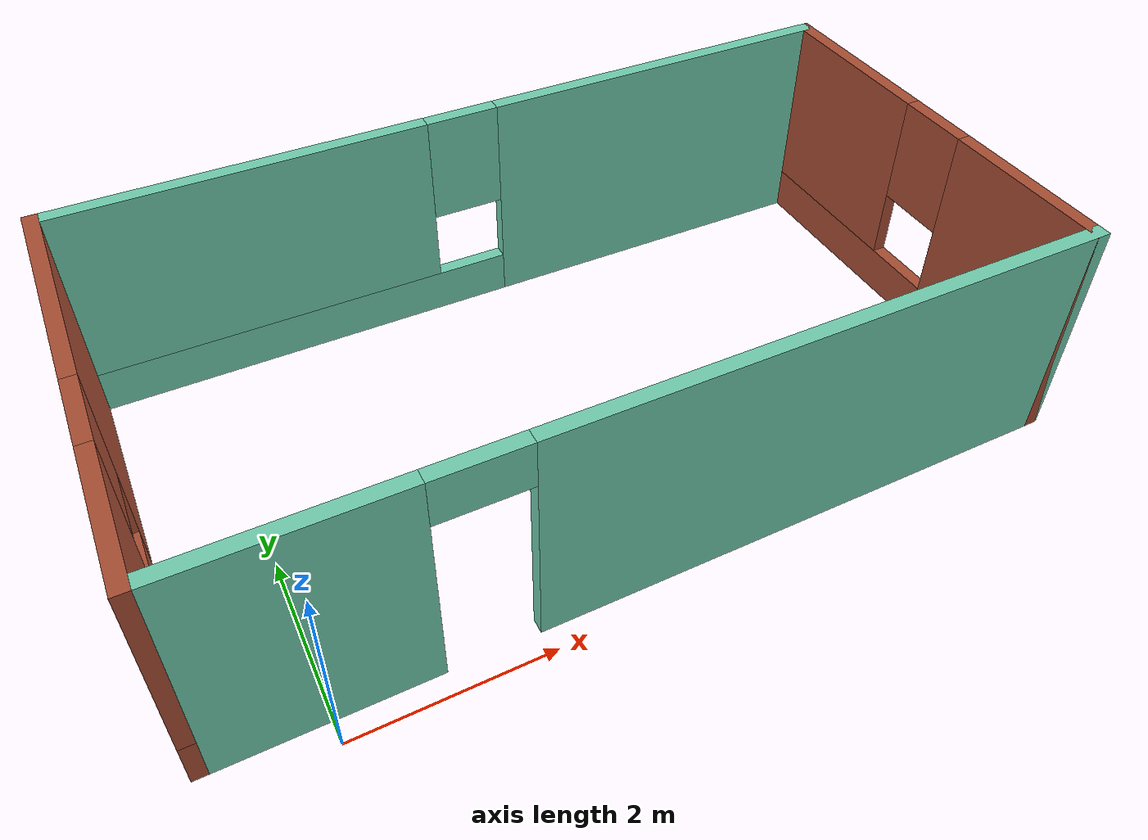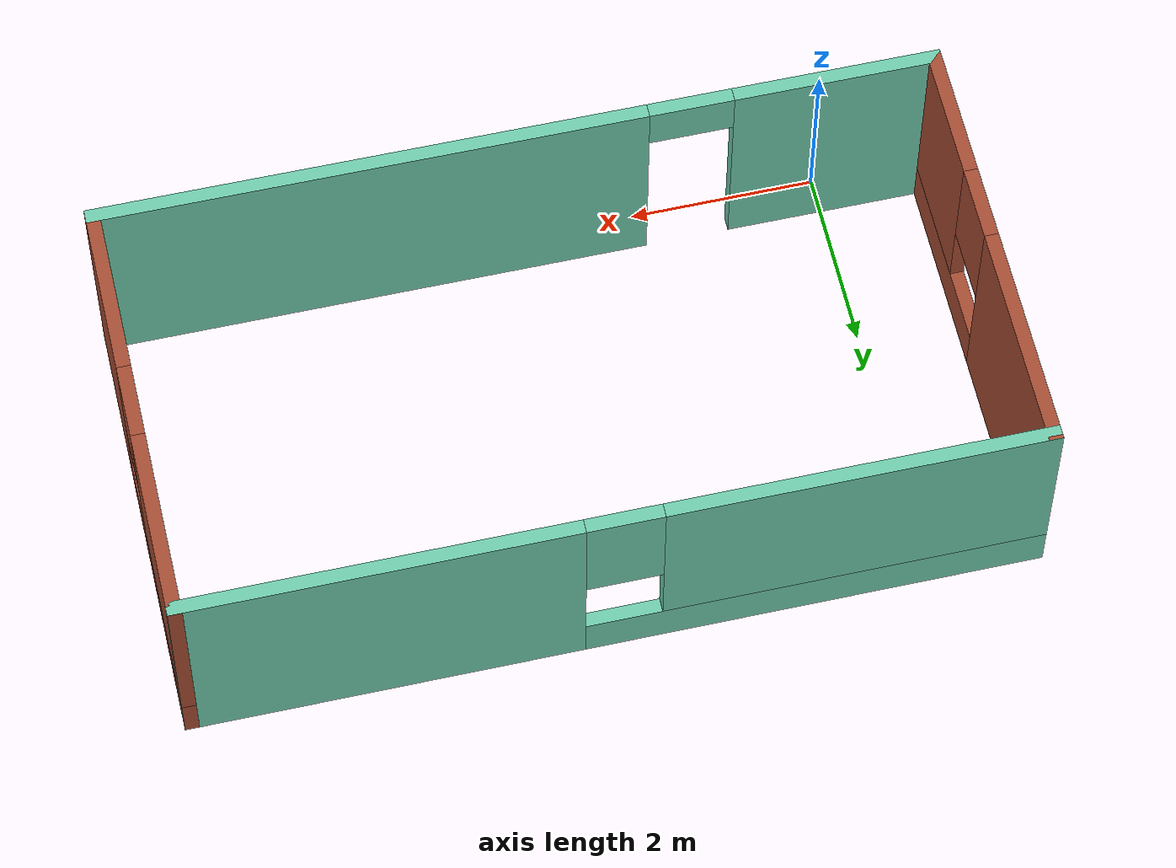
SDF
<?xml version='1.0'?>
<sdf version='1.6'>
  <model name='Scott_building'>
    <pose frame=''>3.30086 2.60386 0 0 -0 0</pose>
    <link name='Wall_3'>
      <pose frame=''>-4.425 0 0 0 -0 -1.5708</pose>
      <visual name='Wall_3_Visual_0'>
        <pose frame=''>-1.15369 0 1.25 0 -0 0</pose>
        <geometry>
          <box>
            <size>2.44261 0.15 2.5</size>
          </box>
        </geometry>
        <material>
          <script>
            <uri>file://media/materials/scripts/gazebo.material</uri>
            <name>Gazebo/Bricks</name>
          </script>
          <ambient>0.435294 0.796078 0.67451 1</ambient>
        </material>
        <meta>
          <layer>0</layer>
        </meta>
      </visual>
      <collision name='Wall_3_Collision_0'>
        <geometry>
          <box>
            <size>2.44261 0.15 2.5</size>
          </box>
        </geometry>
        <pose frame=''>-1.15369 0 1.25 0 -0 0</pose>
      </collision>
      <visual name='Wall_3_Visual_1'>
        <pose frame=''>1.22131 0 0.25 0 -0 0</pose>
        <geometry>
          <box>
            <size>2.30739 0.15 0.5</size>
          </box>
        </geometry>
        <material>
          <script>
            <uri>file://media/materials/scripts/gazebo.material</uri>
            <name>Gazebo/Bricks</name>
          </script>
          <ambient>0.435294 0.796078 0.67451 1</ambient>
        </material>
        <meta>
          <layer>0</layer>
        </meta>
      </visual>
      <collision name='Wall_3_Collision_1'>
        <geometry>
          <box>
            <size>2.30739 0.15 0.5</size>
          </box>
        </geometry>
        <pose frame=''>1.22131 0 0.25 0 -0 0</pose>
      </collision>
      <visual name='Wall_3_Visual_2'>
        <pose frame=''>1.62131 0 1.5 0 -0 0</pose>
        <geometry>
          <box>
            <size>1.50739 0.15 2</size>
          </box>
        </geometry>
        <material>
          <script>
            <uri>file://media/materials/scripts/gazebo.material</uri>
            <name>Gazebo/Bricks</name>
          </script>
          <ambient>0.435294 0.796078 0.67451 1</ambient>
        </material>
        <meta>
          <layer>0</layer>
        </meta>
      </visual>
      <collision name='Wall_3_Collision_2'>
        <geometry>
          <box>
            <size>1.50739 0.15 2</size>
          </box>
        </geometry>
        <pose frame=''>1.62131 0 1.5 0 -0 0</pose>
      </collision>
      <visual name='Wall_3_Visual_3'>
        <pose frame=''>0.467613 0 1.9 0 -0 0</pose>
        <geometry>
          <box>
            <size>0.8 0.15 1.2</size>
          </box>
        </geometry>
        <material>
          <script>
            <uri>file://media/materials/scripts/gazebo.material</uri>
            <name>Gazebo/Bricks</name>
          </script>
          <ambient>0.435294 0.796078 0.67451 1</ambient>
        </material>
        <meta>
          <layer>0</layer>
        </meta>
      </visual>
      <collision name='Wall_3_Collision_3'>
        <geometry>
          <box>
            <size>0.8 0.15 1.2</size>
          </box>
        </geometry>
        <pose frame=''>0.467613 0 1.9 0 -0 0</pose>
      </collision>
    </link>
    <link name='Wall_4'>
      <pose frame=''>0 -2.3 0 0 -0 0</pose>
      <visual name='Wall_4_Visual_0'>
        <pose frame=''>-3.38846 0 1.25 0 -0 0</pose>
        <geometry>
          <box>
            <size>2.22309 0.15 2.5</size>
          </box>
        </geometry>
        <material>
          <script>
            <uri>file://media/materials/scripts/gazebo.material</uri>
            <name>Gazebo/Grey</name>
          </script>
          <ambient>0.435294 0.796078 0.67451 1</ambient>
        </material>
        <meta>
          <layer>0</layer>
        </meta>
      </visual>
      <collision name='Wall_4_Collision_0'>
        <geometry>
          <box>
            <size>2.22309 0.15 2.5</size>
          </box>
        </geometry>
        <pose frame=''>-3.38846 0 1.25 0 -0 0</pose>
      </collision>
      <visual name='Wall_4_Visual_1'>
        <pose frame=''>1.56154 0 1.25 0 -0 0</pose>
        <geometry>
          <box>
            <size>5.87692 0.15 2.5</size>
          </box>
        </geometry>
        <material>
          <script>
            <uri>file://media/materials/scripts/gazebo.material</uri>
            <name>Gazebo/Grey</name>
          </script>
          <ambient>0.435294 0.796078 0.67451 1</ambient>
        </material>
        <meta>
          <layer>0</layer>
        </meta>
      </visual>
      <collision name='Wall_4_Collision_1'>
        <geometry>
          <box>
            <size>5.87692 0.15 2.5</size>
          </box>
        </geometry>
        <pose frame=''>1.56154 0 1.25 0 -0 0</pose>
      </collision>
      <visual name='Wall_4_Visual_2'>
        <pose frame=''>-1.82692 0 2.25 0 -0 0</pose>
        <geometry>
          <box>
            <size>0.9 0.15 0.5</size>
          </box>
        </geometry>
        <material>
          <script>
            <uri>file://media/materials/scripts/gazebo.material</uri>
            <name>Gazebo/Grey</name>
          </script>
          <ambient>0.435294 0.796078 0.67451 1</ambient>
        </material>
        <meta>
          <layer>0</layer>
        </meta>
      </visual>
      <collision name='Wall_4_Collision_2'>
        <geometry>
          <box>
            <size>0.9 0.15 0.5</size>
          </box>
        </geometry>
        <pose frame=''>-1.82692 0 2.25 0 -0 0</pose>
      </collision>
    </link>
    <link name='Wall_5'>
      <pose frame=''>4.425 0 0 0 -0 1.5708</pose>
      <visual name='Wall_5_Visual_0'>
        <pose frame=''>-1.42736 0 1.25 0 -0 0</pose>
        <geometry>
          <box>
            <size>1.89528 0.15 2.5</size>
          </box>
        </geometry>
        <material>
          <script>
            <uri>file://media/materials/scripts/gazebo.material</uri>
            <name>Gazebo/Bricks</name>
          </script>
          <ambient>0.435294 0.796078 0.67451 1</ambient>
        </material>
        <meta>
          <layer>0</layer>
        </meta>
      </visual>
      <collision name='Wall_5_Collision_0'>
        <geometry>
          <box>
            <size>1.89528 0.15 2.5</size>
          </box>
        </geometry>
        <pose frame=''>-1.42736 0 1.25 0 -0 0</pose>
      </collision>
      <visual name='Wall_5_Visual_1'>
        <pose frame=''>0.94764 0 0.25 0 -0 0</pose>
        <geometry>
          <box>
            <size>2.85472 0.15 0.5</size>
          </box>
        </geometry>
        <material>
          <script>
            <uri>file://media/materials/scripts/gazebo.material</uri>
            <name>Gazebo/Bricks</name>
          </script>
          <ambient>0.435294 0.796078 0.67451 1</ambient>
        </material>
        <meta>
          <layer>0</layer>
        </meta>
      </visual>
      <collision name='Wall_5_Collision_1'>
        <geometry>
          <box>
            <size>2.85472 0.15 0.5</size>
          </box>
        </geometry>
        <pose frame=''>0.94764 0 0.25 0 -0 0</pose>
      </collision>
      <visual name='Wall_5_Visual_2'>
        <pose frame=''>1.34764 0 1.5 0 -0 0</pose>
        <geometry>
          <box>
            <size>2.05472 0.15 2</size>
          </box>
        </geometry>
        <material>
          <script>
            <uri>file://media/materials/scripts/gazebo.material</uri>
            <name>Gazebo/Bricks</name>
          </script>
          <ambient>0.435294 0.796078 0.67451 1</ambient>
        </material>
        <meta>
          <layer>0</layer>
        </meta>
      </visual>
      <collision name='Wall_5_Collision_2'>
        <geometry>
          <box>
            <size>2.05472 0.15 2</size>
          </box>
        </geometry>
        <pose frame=''>1.34764 0 1.5 0 -0 0</pose>
      </collision>
      <visual name='Wall_5_Visual_3'>
        <pose frame=''>-0.07972 0 1.9 0 -0 0</pose>
        <geometry>
          <box>
            <size>0.8 0.15 1.2</size>
          </box>
        </geometry>
        <material>
          <script>
            <uri>file://media/materials/scripts/gazebo.material</uri>
            <name>Gazebo/Bricks</name>
          </script>
          <ambient>0.435294 0.796078 0.67451 1</ambient>
        </material>
        <meta>
          <layer>0</layer>
        </meta>
      </visual>
      <collision name='Wall_5_Collision_3'>
        <geometry>
          <box>
            <size>0.8 0.15 1.2</size>
          </box>
        </geometry>
        <pose frame=''>-0.07972 0 1.9 0 -0 0</pose>
      </collision>
    </link>
    <link name='Wall_6'>
      <pose frame=''>0 2.3 0 0 -0 3.14159</pose>
      <visual name='Wall_6_Visual_0'>
        <pose frame=''>-2.41933 0 1.25 0 -0 0</pose>
        <geometry>
          <box>
            <size>4.16133 0.15 2.5</size>
          </box>
        </geometry>
        <material>
          <script>
            <uri>file://media/materials/scripts/gazebo.material</uri>
            <name>Gazebo/Grey</name>
          </script>
          <ambient>0.435294 0.796078 0.67451 1</ambient>
        </material>
        <meta>
          <layer>0</layer>
        </meta>
      </visual>
      <collision name='Wall_6_Collision_0'>
        <geometry>
          <box>
            <size>4.16133 0.15 2.5</size>
          </box>
        </geometry>
        <pose frame=''>-2.41933 0 1.25 0 -0 0</pose>
      </collision>
      <visual name='Wall_6_Visual_1'>
        <pose frame=''>2.08067 0 0.25 0 -0 0</pose>
        <geometry>
          <box>
            <size>4.83867 0.15 0.5</size>
          </box>
        </geometry>
        <material>
          <script>
            <uri>file://media/materials/scripts/gazebo.material</uri>
            <name>Gazebo/Grey</name>
          </script>
          <ambient>0.435294 0.796078 0.67451 1</ambient>
        </material>
        <meta>
          <layer>0</layer>
        </meta>
      </visual>
      <collision name='Wall_6_Collision_1'>
        <geometry>
          <box>
            <size>4.83867 0.15 0.5</size>
          </box>
        </geometry>
        <pose frame=''>2.08067 0 0.25 0 -0 0</pose>
      </collision>
      <visual name='Wall_6_Visual_2'>
        <pose frame=''>2.48067 0 1.5 0 -0 0</pose>
        <geometry>
          <box>
            <size>4.03867 0.15 2</size>
          </box>
        </geometry>
        <material>
          <script>
            <uri>file://media/materials/scripts/gazebo.material</uri>
            <name>Gazebo/Grey</name>
          </script>
          <ambient>0.435294 0.796078 0.67451 1</ambient>
        </material>
        <meta>
          <layer>0</layer>
        </meta>
      </visual>
      <collision name='Wall_6_Collision_2'>
        <geometry>
          <box>
            <size>4.03867 0.15 2</size>
          </box>
        </geometry>
        <pose frame=''>2.48067 0 1.5 0 -0 0</pose>
      </collision>
      <visual name='Wall_6_Visual_3'>
        <pose frame=''>0.061332 0 1.9 0 -0 0</pose>
        <geometry>
          <box>
            <size>0.8 0.15 1.2</size>
          </box>
        </geometry>
        <material>
          <script>
            <uri>file://media/materials/scripts/gazebo.material</uri>
            <name>Gazebo/Grey</name>
          </script>
          <ambient>0.435294 0.796078 0.67451 1</ambient>
        </material>
        <meta>
          <layer>0</layer>
        </meta>
      </visual>
      <collision name='Wall_6_Collision_3'>
        <geometry>
          <box>
            <size>0.8 0.15 1.2</size>
          </box>
        </geometry>
        <pose frame=''>0.061332 0 1.9 0 -0 0</pose>
      </collision>
    </link>
    <static>1</static>
  </model>
</sdf>
